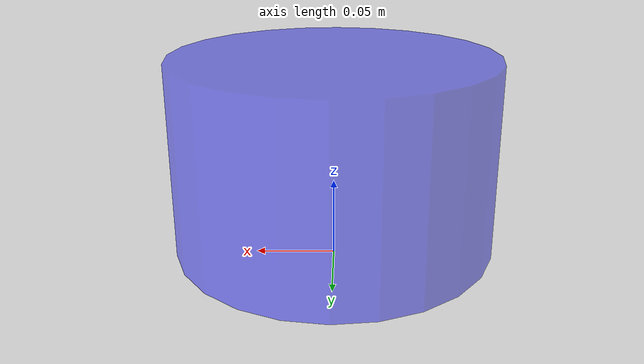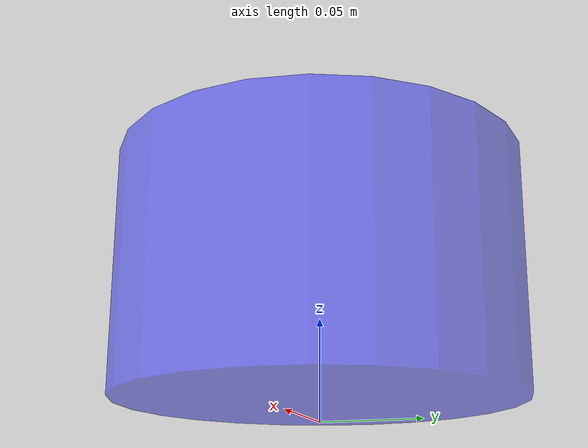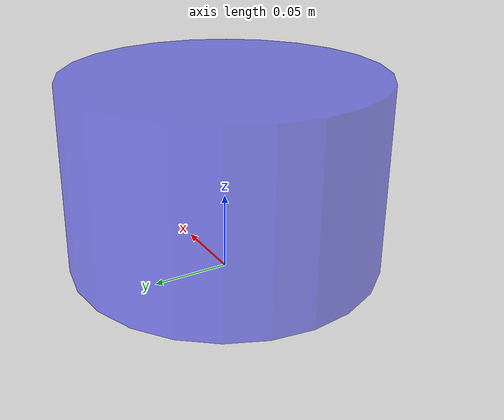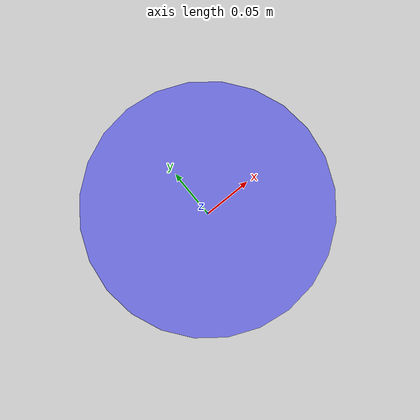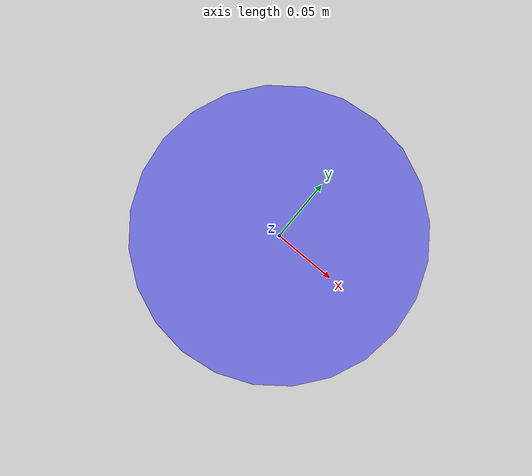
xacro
<?xml version="1.0"?>
<robot xmlns:xacro="http://www.ros.org/wiki/xacro" name="real_fishbot">

    <!-- base_footprint：投影在地面的虚拟点，Nav2 用 -->
    <link name="base_footprint" />

    <!-- base_link：机器人质心坐标系 -->
    <link name="base_link">
        <visual>
            <origin xyz="0 0 0" rpy="0 0 0" />
            <geometry>
                <cylinder length="0.12" radius="0.10" />
            </geometry>
            <material name="blue">
                <color rgba="0.1 0.1 1.0 0.5" />
            </material>
        </visual>
    </link>

    <joint name="base_joint" type="fixed">
        <parent link="base_footprint" />
        <child link="base_link" />
        <!-- TODO: 实测后修改 Z 偏移 = 轮径/2 - 底板厚度 -->
        <origin xyz="0.0 0.0 0.07" rpy="0.0 0.0 0.0" />
    </joint>

    <!-- IMU -->
    <link name="imu_link" />
    <joint name="imu_joint" type="fixed">
        <parent link="base_link" />
        <child link="imu_link" />
        <!-- TODO: 实测安装位置 -->
        <origin xyz="0.0 0.0 0.02" />
    </joint>

    <!-- 激光雷达 -->
    <link name="laser_link" />
    <joint name="laser_joint" type="fixed">
        <parent link="base_link" />
        <child link="laser_link" />
        <!-- TODO: 实测安装位置 -->
        <origin xyz="0.0 0.0 0.10" />
    </joint>

</robot>
